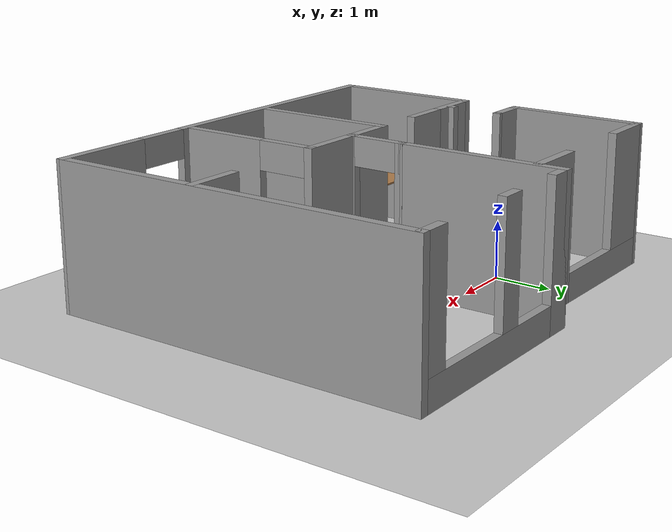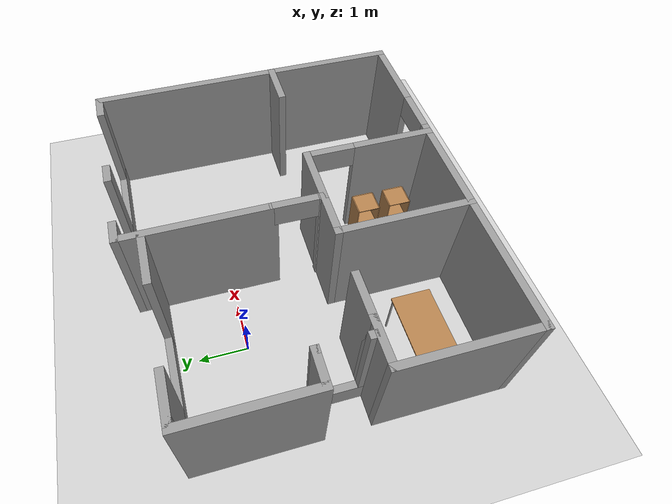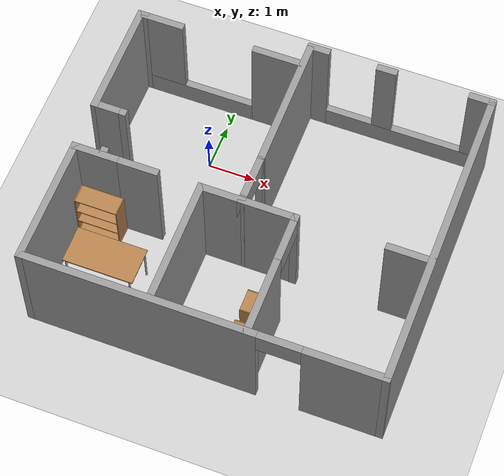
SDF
<sdf version="1.6">
 <world name="default">
  <plugin name="welcome_message" filename="libwelcome_message.so"/>
  <light name="sun" type="directional">
   <pose>0 0 10 0 -0 0</pose>
   <diffuse>0.8 0.8 0.8 1</diffuse>
   <specular>0.2 0.2 0.2 1</specular>
   <attenuation>
    <range>1000</range>
    <constant>0.9</constant>
    <linear>0.01</linear>
    <quadratic>0.001</quadratic>
   </attenuation>
   <direction>-0.5 0.1 -0.9</direction>
  </light>
  <model name="ground_plane">
   <static>1</static>
   <link name="link">
    <collision name="collision">
     <geometry><plane><normal>0 0 1</normal><size>100 100</size></plane></geometry>
     <surface><friction><ode><mu>100</mu><mu2>50</mu2></ode></friction></surface>
    </collision>
    <visual name="visual">
     <cast_shadows>0</cast_shadows>
     <geometry><plane><normal>0 0 1</normal><size>100 100</size></plane></geometry>
     <material>
      <script><uri>file://media/materials/scripts/gazebo.material</uri><name>Gazebo/Grey</name></script>
     </material>
    </visual>
   </link>
  </model>
  <gravity>0 0 -9.8</gravity>
  <magnetic_field>6e-06 2.3e-05 -4.2e-05</magnetic_field>
  <atmosphere type="adiabatic"/>
  <physics name="default_physics" default="0" type="ode">
   <max_step_size>0.001</max_step_size>
   <real_time_factor>1</real_time_factor>
   <real_time_update_rate>1000</real_time_update_rate>
  </physics>
  <scene><ambient>0.4 0.4 0.4 1</ambient><background>0.7 0.7 0.7 1</background><shadows>1</shadows></scene>
  <spherical_coordinates>
   <surface_model>EARTH_WGS84</surface_model>
   <latitude_deg>0</latitude_deg>
   <longitude_deg>0</longitude_deg>
   <elevation>0</elevation>
   <heading_deg>0</heading_deg>
  </spherical_coordinates>
  <model name="room">
   <pose>1.64253 -1.29205 0 0 -0 0</pose>
   <link name="Wall_13">
    <collision name="Wall_13_Collision">
     <geometry><box><size>6.62192 0.15 2.5</size></box></geometry>
     <pose>0 0 1.25 0 -0 0</pose>
    </collision>
    <visual name="Wall_13_Visual">
     <pose>0 0 1.25 0 -0 0</pose>
     <geometry><box><size>6.62192 0.15 2.5</size></box></geometry>
     <material>
      <script><uri>file://media/materials/scripts/gazebo.material</uri><name>Gazebo/Grey</name></script>
      <ambient>1 1 1 1</ambient>
     </material>
     <meta><layer>0</layer></meta>
    </visual>
    <pose>3.68311 0 0 0 0 -1.57099</pose>
   </link>
   <link name="Wall_14">
    <pose>0.007476 -3.2356 0 0 -0 3.14159</pose>
    <visual name="Wall_14_Visual_0">
     <pose>-2.88848 0 1.25 0 -0 0</pose>
     <geometry><box><size>1.72305 0.15 2.5</size></box></geometry>
     <material>
      <script><uri>file://media/materials/scripts/gazebo.material</uri><name>Gazebo/Grey</name></script>
      <ambient>1 1 1 1</ambient>
     </material>
     <meta><layer>0</layer></meta>
    </visual>
    <collision name="Wall_14_Collision_0">
     <geometry><box><size>1.72305 0.15 2.5</size></box></geometry>
     <pose>-2.88848 0 1.25 0 -0 0</pose>
    </collision>
    <visual name="Wall_14_Visual_1">
     <pose>1.31153 0 1.25 0 -0 0</pose>
     <geometry><box><size>4.87695 0.15 2.5</size></box></geometry>
     <material>
      <script><uri>file://media/materials/scripts/gazebo.material</uri><name>Gazebo/Grey</name></script>
      <ambient>1 1 1 1</ambient>
     </material>
     <meta><layer>0</layer></meta>
    </visual>
    <collision name="Wall_14_Collision_1">
     <geometry><box><size>4.87695 0.15 2.5</size></box></geometry>
     <pose>1.31153 0 1.25 0 -0 0</pose>
    </collision>
    <visual name="Wall_14_Visual_2">
     <pose>-1.57695 0 2.25 0 -0 0</pose>
     <geometry><box><size>0.9 0.15 0.5</size></box></geometry>
     <material>
      <script><uri>file://media/materials/scripts/gazebo.material</uri><name>Gazebo/Grey</name></script>
      <ambient>1 1 1 1</ambient>
     </material>
     <meta><layer>0</layer></meta>
    </visual>
    <collision name="Wall_14_Collision_2">
     <geometry><box><size>0.9 0.15 0.5</size></box></geometry>
     <pose>-1.57695 0 2.25 0 -0 0</pose>
    </collision>
   </link>
   <link name="Wall_16">
    <collision name="Wall_16_Collision">
     <geometry><box><size>2.75 0.15 2.5</size></box></geometry>
     <pose>0 0 1.25 0 -0 0</pose>
    </collision>
    <visual name="Wall_16_Visual">
     <pose>0 0 1.25 0 -0 0</pose>
     <geometry><box><size>2.75 0.15 2.5</size></box></geometry>
     <material>
      <script><uri>file://media/materials/scripts/gazebo.material</uri><name>Gazebo/Grey</name></script>
      <ambient>1 1 1 1</ambient>
     </material>
     <meta><layer>0</layer></meta>
    </visual>
    <pose>-3.66752 -1.9356 0 0 -0 1.5708</pose>
   </link>
   <link name="Wall_18">
    <collision name="Wall_18_Collision">
     <geometry><box><size>1 0.15 2.5</size></box></geometry>
     <pose>0 0 1.25 0 -0 0</pose>
    </collision>
    <visual name="Wall_18_Visual">
     <pose>0 0 1.25 0 -0 0</pose>
     <geometry><box><size>1 0.15 2.5</size></box></geometry>
     <material>
      <script><uri>file://media/materials/scripts/gazebo.material</uri><name>Gazebo/Grey</name></script>
      <ambient>1 1 1 1</ambient>
     </material>
     <meta><layer>0</layer></meta>
    </visual>
    <pose>-3.24252 -0.635604 0 0 -0 0</pose>
   </link>
   <link name="Wall_22">
    <collision name="Wall_22_Collision">
     <geometry><box><size>3.048 0.15 2.5</size></box></geometry>
     <pose>0 0 1.25 0 -0 0</pose>
    </collision>
    <visual name="Wall_22_Visual">
     <pose>0 0 1.25 0 -0 0</pose>
     <geometry><box><size>3.048 0.15 2.5</size></box></geometry>
     <material>
      <script><uri>file://media/materials/scripts/gazebo.material</uri><name>Gazebo/Grey</name></script>
      <ambient>1 1 1 1</ambient>
     </material>
     <meta><layer>0</layer></meta>
    </visual>
    <pose>-0.152502 1.7866 0 0 0 -1.5708</pose>
   </link>
   <link name="Wall_24">
    <collision name="Wall_24_Collision">
     <geometry><box><size>1.25 0.15 2.5</size></box></geometry>
     <pose>0 0 1.25 0 -0 0</pose>
    </collision>
    <visual name="Wall_24_Visual">
     <pose>0 0 1.25 0 -0 0</pose>
     <geometry><box><size>1.25 0.15 2.5</size></box></geometry>
     <material>
      <script><uri>file://media/materials/scripts/gazebo.material</uri><name>Gazebo/Grey</name></script>
      <ambient>1 1 1 1</ambient>
     </material>
     <meta><layer>0</layer></meta>
    </visual>
    <pose>0.386851 -0.635466 0 0 -0 0</pose>
   </link>
   <link name="Wall_26">
    <collision name="Wall_26_Collision">
     <geometry><box><size>1 0.15 2.5</size></box></geometry>
     <pose>0 0 1.25 0 -0 0</pose>
    </collision>
    <visual name="Wall_26_Visual">
     <pose>0 0 1.25 0 -0 0</pose>
     <geometry><box><size>1 0.15 2.5</size></box></geometry>
     <material>
      <script><uri>file://media/materials/scripts/gazebo.material</uri><name>Gazebo/Grey</name></script>
      <ambient>1 1 1 1</ambient>
     </material>
     <meta><layer>0</layer></meta>
    </visual>
    <pose>3.25414 -0.611225 0 0 -0 3.14159</pose>
   </link>
   <link name="Wall_28">
    <pose>-0.157825 -0.148931 0 0 0 -1.58174</pose>
    <visual name="Wall_28_Visual_0">
     <pose>-0.538046 0 1.25 0 -0 0</pose>
     <geometry><box><size>0.047036 0.15 2.5</size></box></geometry>
     <material>
      <script><uri>file://media/materials/scripts/gazebo.material</uri><name>Gazebo/Grey</name></script>
      <ambient>1 1 1 1</ambient>
     </material>
     <meta><layer>0</layer></meta>
    </visual>
    <collision name="Wall_28_Collision_0">
     <geometry><box><size>0.047036 0.15 2.5</size></box></geometry>
     <pose>-0.538046 0 1.25 0 -0 0</pose>
    </collision>
    <visual name="Wall_28_Visual_1">
     <pose>0.473518 0 1.25 0 -0 0</pose>
     <geometry><box><size>0.176093 0.15 2.5</size></box></geometry>
     <material>
      <script><uri>file://media/materials/scripts/gazebo.material</uri><name>Gazebo/Grey</name></script>
      <ambient>1 1 1 1</ambient>
     </material>
     <meta><layer>0</layer></meta>
    </visual>
    <collision name="Wall_28_Collision_1">
     <geometry><box><size>0.176093 0.15 2.5</size></box></geometry>
     <pose>0.473518 0 1.25 0 -0 0</pose>
    </collision>
    <visual name="Wall_28_Visual_2">
     <pose>-0.064528 0 2.25 0 -0 0</pose>
     <geometry><box><size>0.9 0.15 0.5</size></box></geometry>
     <material>
      <script><uri>file://media/materials/scripts/gazebo.material</uri><name>Gazebo/Grey</name></script>
      <ambient>1 1 1 1</ambient>
     </material>
     <meta><layer>0</layer></meta>
    </visual>
    <collision name="Wall_28_Collision_2">
     <geometry><box><size>0.9 0.15 0.5</size></box></geometry>
     <pose>-0.064528 0 2.25 0 -0 0</pose>
    </collision>
   </link>
   <link name="Wall_32">
    <pose>-1.90875 2.77411 0 0 -0 3.14159</pose>
    <visual name="Wall_32_Visual_0">
     <pose>-1.21246 0 1.25 0 -0 0</pose>
     <geometry><box><size>1.07508 0.15 2.5</size></box></geometry>
     <material>
      <script><uri>file://media/materials/scripts/gazebo.material</uri><name>Gazebo/Grey</name></script>
      <ambient>1 1 1 1</ambient>
     </material>
     <meta><layer>0</layer></meta>
    </visual>
    <collision name="Wall_32_Collision_0">
     <geometry><box><size>1.07508 0.15 2.5</size></box></geometry>
     <pose>-1.21246 0 1.25 0 -0 0</pose>
    </collision>
    <visual name="Wall_32_Visual_1">
     <pose>0.537538 0 0.25 0 -0 0</pose>
     <geometry><box><size>2.42492 0.15 0.5</size></box></geometry>
     <material>
      <script><uri>file://media/materials/scripts/gazebo.material</uri><name>Gazebo/Grey</name></script>
      <ambient>1 1 1 1</ambient>
     </material>
     <meta><layer>0</layer></meta>
    </visual>
    <collision name="Wall_32_Collision_1">
     <geometry><box><size>2.42492 0.15 0.5</size></box></geometry>
     <pose>0.537538 0 0.25 0 -0 0</pose>
    </collision>
    <visual name="Wall_32_Visual_2">
     <pose>1.28754 0 1.5 0 -0 0</pose>
     <geometry><box><size>0.924924 0.15 2</size></box></geometry>
     <material>
      <script><uri>file://media/materials/scripts/gazebo.material</uri><name>Gazebo/Grey</name></script>
      <ambient>1 1 1 1</ambient>
     </material>
     <meta><layer>0</layer></meta>
    </visual>
    <collision name="Wall_32_Collision_2">
     <geometry><box><size>0.924924 0.15 2</size></box></geometry>
     <pose>1.28754 0 1.5 0 -0 0</pose>
    </collision>
   </link>
   <link name="Wall_34">
    <collision name="Wall_34_Collision">
     <geometry><box><size>0.25 0.15 2.5</size></box></geometry>
     <pose>0 0 1.25 0 -0 0</pose>
    </collision>
    <visual name="Wall_34_Visual">
     <pose>0 0 1.25 0 -0 0</pose>
     <geometry><box><size>0.25 0.15 2.5</size></box></geometry>
     <material>
      <script><uri>file://media/materials/scripts/gazebo.material</uri><name>Gazebo/Grey</name></script>
      <ambient>1 1 1 1</ambient>
     </material>
     <meta><layer>0</layer></meta>
    </visual>
    <pose>-3.63375 2.77411 0 0 -0 3.14159</pose>
   </link>
   <link name="Wall_35">
    <collision name="Wall_35_Collision">
     <geometry><box><size>2.5 0.15 2.5</size></box></geometry>
     <pose>0 0 1.25 0 -0 0</pose>
    </collision>
    <visual name="Wall_35_Visual">
     <pose>0 0 1.25 0 -0 0</pose>
     <geometry><box><size>2.5 0.15 2.5</size></box></geometry>
     <material>
      <script><uri>file://media/materials/scripts/gazebo.material</uri><name>Gazebo/Grey</name></script>
      <ambient>1 1 1 1</ambient>
     </material>
     <meta><layer>0</layer></meta>
    </visual>
    <pose>-3.68376 1.59911 0 0 0 -1.5708</pose>
   </link>
   <link name="Wall_39">
    <collision name="Wall_39_Collision">
     <geometry><box><size>0.75 0.15 2.5</size></box></geometry>
     <pose>0 0 1.25 0 -0 0</pose>
    </collision>
    <visual name="Wall_39_Visual">
     <pose>0 0 1.25 0 -0 0</pose>
     <geometry><box><size>0.75 0.15 2.5</size></box></geometry>
     <material>
      <script><uri>file://media/materials/scripts/gazebo.material</uri><name>Gazebo/Grey</name></script>
      <ambient>1 1 1 1</ambient>
     </material>
     <meta><layer>0</layer></meta>
    </visual>
    <pose>-3.38355 0.424054 0 0 0 -0.0002</pose>
   </link>
   <link name="Wall_41">
    <collision name="Wall_41_Collision">
     <geometry><box><size>1 0.15 2.5</size></box></geometry>
     <pose>0 0 1.25 0 -0 0</pose>
    </collision>
    <visual name="Wall_41_Visual">
     <pose>0 0 1.25 0 -0 0</pose>
     <geometry><box><size>1 0.15 2.5</size></box></geometry>
     <material>
      <script><uri>file://media/materials/scripts/gazebo.material</uri><name>Gazebo/Grey</name></script>
      <ambient>1 1 1 1</ambient>
     </material>
     <meta><layer>0</layer></meta>
    </visual>
    <pose>-2.39252 -0.635604 0 0 -0 0</pose>
   </link>
   <link name="Wall_53">
    <pose>-3.08335 -0.058006 0 0 0 -1.5708</pose>
    <visual name="Wall_53_Visual_0">
     <pose>-0.481204 0 1.25 0 -0 0</pose>
     <geometry><box><size>0.151592 0.15 2.5</size></box></geometry>
     <material>
      <script><uri>file://media/materials/scripts/gazebo.material</uri><name>Gazebo/Grey</name></script>
      <ambient>1 1 1 1</ambient>
     </material>
     <meta><layer>0</layer></meta>
    </visual>
    <collision name="Wall_53_Collision_0">
     <geometry><box><size>0.151592 0.15 2.5</size></box></geometry>
     <pose>-0.481204 0 1.25 0 -0 0</pose>
    </collision>
    <visual name="Wall_53_Visual_1">
     <pose>0.075796 0 0.25 0 -0 0</pose>
     <geometry><box><size>0.962408 0.15 0.5</size></box></geometry>
     <material>
      <script><uri>file://media/materials/scripts/gazebo.material</uri><name>Gazebo/Grey</name></script>
      <ambient>1 1 1 1</ambient>
     </material>
     <meta><layer>0</layer></meta>
    </visual>
    <collision name="Wall_53_Collision_1">
     <geometry><box><size>0.962408 0.15 0.5</size></box></geometry>
     <pose>0.075796 0 0.25 0 -0 0</pose>
    </collision>
    <visual name="Wall_53_Visual_2">
     <pose>0.475796 0 1.5 0 -0 0</pose>
     <geometry><box><size>0.162408 0.15 2</size></box></geometry>
     <material>
      <script><uri>file://media/materials/scripts/gazebo.material</uri><name>Gazebo/Grey</name></script>
      <ambient>1 1 1 1</ambient>
     </material>
     <meta><layer>0</layer></meta>
    </visual>
    <collision name="Wall_53_Collision_2">
     <geometry><box><size>0.162408 0.15 2</size></box></geometry>
     <pose>0.475796 0 1.5 0 -0 0</pose>
    </collision>
   </link>
   <link name="Wall_55">
    <collision name="Wall_55_Collision">
     <geometry><box><size>1 0.15 2.5</size></box></geometry>
     <pose>0 0 1.25 0 -0 0</pose>
    </collision>
    <visual name="Wall_55_Visual">
     <pose>0 0 1.25 0 -0 0</pose>
     <geometry><box><size>1 0.15 2.5</size></box></geometry>
     <material>
      <script><uri>file://media/materials/scripts/gazebo.material</uri><name>Gazebo/Grey</name></script>
      <ambient>1 1 1 1</ambient>
     </material>
     <meta><layer>0</layer></meta>
    </visual>
    <pose>-0.588149 -0.635466 0 0 -0 3.14159</pose>
   </link>
   <link name="Wall_56">
    <collision name="Wall_56_Collision">
     <geometry><box><size>2.75 0.15 2.5</size></box></geometry>
     <pose>0 0 1.25 0 -0 0</pose>
    </collision>
    <visual name="Wall_56_Visual">
     <pose>0 0 1.25 0 -0 0</pose>
     <geometry><box><size>2.75 0.15 2.5</size></box></geometry>
     <material>
      <script><uri>file://media/materials/scripts/gazebo.material</uri><name>Gazebo/Grey</name></script>
      <ambient>1 1 1 1</ambient>
     </material>
     <meta><layer>0</layer></meta>
    </visual>
    <pose>-1.01315 -1.93547 0 0 0 -1.5708</pose>
   </link>
   <link name="Wall_60">
    <pose>0.936852 -1.93547 0 0 0 -1.5708</pose>
    <visual name="Wall_60_Visual_0">
     <pose>-1.29738 0 1.25 0 -0 0</pose>
     <geometry><box><size>0.155245 0.15 2.5</size></box></geometry>
     <material>
      <script><uri>file://media/materials/scripts/gazebo.material</uri><name>Gazebo/Grey</name></script>
      <ambient>1 1 1 1</ambient>
     </material>
     <meta><layer>0</layer></meta>
    </visual>
    <collision name="Wall_60_Collision_0">
     <geometry><box><size>0.155245 0.15 2.5</size></box></geometry>
     <pose>-1.29738 0 1.25 0 -0 0</pose>
    </collision>
    <visual name="Wall_60_Visual_1">
     <pose>0.527623 0 1.25 0 -0 0</pose>
     <geometry><box><size>1.69476 0.15 2.5</size></box></geometry>
     <material>
      <script><uri>file://media/materials/scripts/gazebo.material</uri><name>Gazebo/Grey</name></script>
      <ambient>1 1 1 1</ambient>
     </material>
     <meta><layer>0</layer></meta>
    </visual>
    <collision name="Wall_60_Collision_1">
     <geometry><box><size>1.69476 0.15 2.5</size></box></geometry>
     <pose>0.527623 0 1.25 0 -0 0</pose>
    </collision>
    <visual name="Wall_60_Visual_2">
     <pose>-0.769755 0 2.25 0 -0 0</pose>
     <geometry><box><size>0.9 0.15 0.5</size></box></geometry>
     <material>
      <script><uri>file://media/materials/scripts/gazebo.material</uri><name>Gazebo/Grey</name></script>
      <ambient>1 1 1 1</ambient>
     </material>
     <meta><layer>0</layer></meta>
    </visual>
    <collision name="Wall_60_Collision_2">
     <geometry><box><size>0.9 0.15 0.5</size></box></geometry>
     <pose>-0.769755 0 2.25 0 -0 0</pose>
    </collision>
   </link>
   <link name="Wall_9">
    <pose>1.7535 3.2356 0 0 -0 0</pose>
    <visual name="Wall_9_Visual_0">
     <pose>-1.73618 0 1.25 0 -0 0</pose>
     <geometry><box><size>0.489646 0.15 2.5</size></box></geometry>
     <material>
      <script><uri>file://media/materials/scripts/gazebo.material</uri><name>Gazebo/Grey</name></script>
      <ambient>1 1 1 1</ambient>
     </material>
     <meta><layer>0</layer></meta>
    </visual>
    <collision name="Wall_9_Collision_0">
     <geometry><box><size>0.489646 0.15 2.5</size></box></geometry>
     <pose>-1.73618 0 1.25 0 -0 0</pose>
    </collision>
    <visual name="Wall_9_Visual_1">
     <pose>0.244823 0 0.25 0 -0 0</pose>
     <geometry><box><size>3.47235 0.15 0.5</size></box></geometry>
     <material>
      <script><uri>file://media/materials/scripts/gazebo.material</uri><name>Gazebo/Grey</name></script>
      <ambient>1 1 1 1</ambient>
     </material>
     <meta><layer>0</layer></meta>
    </visual>
    <collision name="Wall_9_Collision_1">
     <geometry><box><size>3.47235 0.15 0.5</size></box></geometry>
     <pose>0.244823 0 0.25 0 -0 0</pose>
    </collision>
    <visual name="Wall_9_Visual_2">
     <pose>-0.276625 0 1.5 0 -0 0</pose>
     <geometry><box><size>0.429458 0.15 2</size></box></geometry>
     <material>
      <script><uri>file://media/materials/scripts/gazebo.material</uri><name>Gazebo/Grey</name></script>
      <ambient>1 1 1 1</ambient>
     </material>
     <meta><layer>0</layer></meta>
    </visual>
    <collision name="Wall_9_Collision_2">
     <geometry><box><size>0.429458 0.15 2</size></box></geometry>
     <pose>-0.276625 0 1.5 0 -0 0</pose>
    </collision>
    <visual name="Wall_9_Visual_3">
     <pose>1.70955 0 1.5 0 -0 0</pose>
     <geometry><box><size>0.542896 0.15 2</size></box></geometry>
     <material>
      <script><uri>file://media/materials/scripts/gazebo.material</uri><name>Gazebo/Grey</name></script>
      <ambient>1 1 1 1</ambient>
     </material>
     <meta><layer>0</layer></meta>
    </visual>
    <collision name="Wall_9_Collision_3">
     <geometry><box><size>0.542896 0.15 2</size></box></geometry>
     <pose>1.70955 0 1.5 0 -0 0</pose>
    </collision>
   </link>
   <static>1</static>
  </model>
  <model name="bookshelf">
   <static>1</static>
   <link name="link">
    <inertial><mass>1</mass></inertial>
    <collision name="back">
     <pose>0 0.005 0.6 0 -0 0</pose>
     <geometry><box><size>0.9 0.01 1.2</size></box></geometry>
    </collision>
    <visual name="visual1">
     <pose>0 0.005 0.6 0 -0 0</pose>
     <geometry><box><size>0.9 0.01 1.2</size></box></geometry>
     <material>
      <script><uri>file://media/materials/scripts/gazebo.material</uri><name>Gazebo/Wood</name></script>
     </material>
    </visual>
    <collision name="left_side">
     <pose>0.45 -0.195 0.6 0 -0 0</pose>
     <geometry><box><size>0.02 0.4 1.2</size></box></geometry>
    </collision>
    <visual name="visual2">
     <pose>0.45 -0.195 0.6 0 -0 0</pose>
     <geometry><box><size>0.02 0.4 1.2</size></box></geometry>
     <material>
      <script><uri>file://media/materials/scripts/gazebo.material</uri><name>Gazebo/Wood</name></script>
     </material>
    </visual>
    <collision name="right_side">
     <pose>-0.45 -0.195 0.6 0 -0 0</pose>
     <geometry><box><size>0.02 0.4 1.2</size></box></geometry>
    </collision>
    <visual name="visual3">
     <pose>-0.45 -0.195 0.6 0 -0 0</pose>
     <geometry><box><size>0.02 0.4 1.2</size></box></geometry>
     <material>
      <script><uri>file://media/materials/scripts/gazebo.material</uri><name>Gazebo/Wood</name></script>
     </material>
    </visual>
    <collision name="bottom">
     <pose>0 -0.195 0.03 0 -0 0</pose>
     <geometry><box><size>0.88 0.4 0.06</size></box></geometry>
    </collision>
    <visual name="visual4">
     <pose>0 -0.195 0.03 0 -0 0</pose>
     <geometry><box><size>0.88 0.4 0.06</size></box></geometry>
     <material>
      <script><uri>file://media/materials/scripts/gazebo.material</uri><name>Gazebo/Wood</name></script>
     </material>
    </visual>
    <collision name="top">
     <pose>0 -0.195 1.19 0 -0 0</pose>
     <geometry><box><size>0.88 0.4 0.02</size></box></geometry>
    </collision>
    <visual name="visual5">
     <pose>0 -0.195 1.19 0 -0 0</pose>
     <geometry><box><size>0.88 0.4 0.02</size></box></geometry>
     <material>
      <script><uri>file://media/materials/scripts/gazebo.material</uri><name>Gazebo/Wood</name></script>
     </material>
    </visual>
    <collision name="low_shelf">
     <pose>0 -0.195 0.43 0 -0 0</pose>
     <geometry><box><size>0.88 0.4 0.02</size></box></geometry>
    </collision>
    <visual name="visual6">
     <pose>0 -0.195 0.43 0 -0 0</pose>
     <geometry><box><size>0.88 0.4 0.02</size></box></geometry>
     <material>
      <script><uri>file://media/materials/scripts/gazebo.material</uri><name>Gazebo/Wood</name></script>
     </material>
    </visual>
    <collision name="high_shelf">
     <pose>0 -0.195 0.8 0 -0 0</pose>
     <geometry><box><size>0.88 0.4 0.02</size></box></geometry>
    </collision>
    <visual name="visual7">
     <pose>0 -0.195 0.8 0 -0 0</pose>
     <geometry><box><size>0.88 0.4 0.02</size></box></geometry>
     <material>
      <script><uri>file://media/materials/scripts/gazebo.material</uri><name>Gazebo/Wood</name></script>
     </material>
    </visual>
   </link>
   <pose>-1.48479 -2.01841 0 0 -0 0</pose>
  </model>
  <model name="cabinet">
   <static>1</static>
   <link name="cabinet_bottom_plate">
    <inertial>
     <pose>0 0 -1 0 -0 0</pose>
     <inertia><ixx>2.05</ixx><ixy>0</ixy><ixz>0</ixz><iyy>2.05</iyy><iyz>0</iyz><izz>2.05</izz></inertia>
     <mass>25</mass>
    </inertial>
    <collision name="cabinet_bottom_plate_geom">
     <pose>0 0 0.01 0 -0 0</pose>
     <geometry><box><size>0.45 0.45 0.02</size></box></geometry>
    </collision>
    <visual name="cabinet_bottom_plate_geom_visual">
     <pose>0 0 0.01 0 -0 0</pose>
     <geometry><box><size>0.45 0.45 0.02</size></box></geometry>
     <material>
      <script><uri>file://media/materials/scripts/gazebo.material</uri><name>Gazebo/Wood</name></script>
     </material>
    </visual>
    <collision name="cabinet_bottom_plate_geom_cabinet_back_plate">
     <pose>0.235 0 0.51 0 -0 0</pose>
     <geometry><box><size>0.02 0.45 1.02</size></box></geometry>
    </collision>
    <visual name="cabinet_bottom_plate_geom_cabinet_back_plate_visual">
     <pose>0.235 0 0.51 0 -0 0</pose>
     <geometry><box><size>0.02 0.45 1.02</size></box></geometry>
     <material>
      <script><uri>file://media/materials/scripts/gazebo.material</uri><name>Gazebo/Wood</name></script>
     </material>
    </visual>
    <collision name="cabinet_bottom_plate_geom_cabinet_left_plate">
     <pose>0 0.235 0.51 0 -0 0</pose>
     <geometry><box><size>0.45 0.02 1.02</size></box></geometry>
    </collision>
    <visual name="cabinet_bottom_plate_geom_cabinet_left_plate_visual">
     <pose>0 0.235 0.51 0 -0 0</pose>
     <geometry><box><size>0.45 0.02 1.02</size></box></geometry>
     <material>
      <script><uri>file://media/materials/scripts/gazebo.material</uri><name>Gazebo/Wood</name></script>
     </material>
    </visual>
    <collision name="cabinet_bottom_plate_geom_cabinet_middle_plate">
     <pose>0 0 0.51 0 -0 0</pose>
     <geometry><box><size>0.45 0.45 0.02</size></box></geometry>
    </collision>
    <visual name="cabinet_bottom_plate_geom_cabinet_middle_plate_visual">
     <pose>0 0 0.51 0 -0 0</pose>
     <geometry><box><size>0.45 0.45 0.02</size></box></geometry>
     <material>
      <script><uri>file://media/materials/scripts/gazebo.material</uri><name>Gazebo/Wood</name></script>
     </material>
    </visual>
    <collision name="cabinet_bottom_plate_geom_cabinet_right_plate">
     <pose>0 -0.235 0.51 0 -0 0</pose>
     <geometry><box><size>0.45 0.02 1.02</size></box></geometry>
    </collision>
    <visual name="cabinet_bottom_plate_geom_cabinet_right_plate_visual">
     <pose>0 -0.235 0.51 0 -0 0</pose>
     <geometry><box><size>0.45 0.02 1.02</size></box></geometry>
     <material>
      <script><uri>file://media/materials/scripts/gazebo.material</uri><name>Gazebo/Wood</name></script>
     </material>
    </visual>
    <collision name="cabinet_bottom_plate_geom_cabinet_top_plate">
     <pose>0 0 1.01 0 -0 0</pose>
     <geometry><box><size>0.45 0.45 0.02</size></box></geometry>
    </collision>
    <visual name="cabinet_bottom_plate_geom_cabinet_top_plate_visual">
     <pose>0 0 1.01 0 -0 0</pose>
     <geometry><box><size>0.45 0.45 0.02</size></box></geometry>
     <material>
      <script><uri>file://media/materials/scripts/gazebo.material</uri><name>Gazebo/Wood</name></script>
     </material>
    </visual>
   </link>
   <pose>2.2278 -3.21071 0 0 -0 0</pose>
  </model>
  <model name="cabinet_0">
   <static>1</static>
   <link name="cabinet_bottom_plate">
    <inertial>
     <pose>0 0 -1 0 -0 0</pose>
     <inertia><ixx>2.05</ixx><ixy>0</ixy><ixz>0</ixz><iyy>2.05</iyy><iyz>0</iyz><izz>2.05</izz></inertia>
     <mass>25</mass>
    </inertial>
    <collision name="cabinet_bottom_plate_geom">
     <pose>0 0 0.01 0 -0 0</pose>
     <geometry><box><size>0.45 0.45 0.02</size></box></geometry>
    </collision>
    <visual name="cabinet_bottom_plate_geom_visual">
     <pose>0 0 0.01 0 -0 0</pose>
     <geometry><box><size>0.45 0.45 0.02</size></box></geometry>
     <material>
      <script><uri>file://media/materials/scripts/gazebo.material</uri><name>Gazebo/Wood</name></script>
     </material>
    </visual>
    <collision name="cabinet_bottom_plate_geom_cabinet_back_plate">
     <pose>0.235 0 0.51 0 -0 0</pose>
     <geometry><box><size>0.02 0.45 1.02</size></box></geometry>
    </collision>
    <visual name="cabinet_bottom_plate_geom_cabinet_back_plate_visual">
     <pose>0.235 0 0.51 0 -0 0</pose>
     <geometry><box><size>0.02 0.45 1.02</size></box></geometry>
     <material>
      <script><uri>file://media/materials/scripts/gazebo.material</uri><name>Gazebo/Wood</name></script>
     </material>
    </visual>
    <collision name="cabinet_bottom_plate_geom_cabinet_left_plate">
     <pose>0 0.235 0.51 0 -0 0</pose>
     <geometry><box><size>0.45 0.02 1.02</size></box></geometry>
    </collision>
    <visual name="cabinet_bottom_plate_geom_cabinet_left_plate_visual">
     <pose>0 0.235 0.51 0 -0 0</pose>
     <geometry><box><size>0.45 0.02 1.02</size></box></geometry>
     <material>
      <script><uri>file://media/materials/scripts/gazebo.material</uri><name>Gazebo/Wood</name></script>
     </material>
    </visual>
    <collision name="cabinet_bottom_plate_geom_cabinet_middle_plate">
     <pose>0 0 0.51 0 -0 0</pose>
     <geometry><box><size>0.45 0.45 0.02</size></box></geometry>
    </collision>
    <visual name="cabinet_bottom_plate_geom_cabinet_middle_plate_visual">
     <pose>0 0 0.51 0 -0 0</pose>
     <geometry><box><size>0.45 0.45 0.02</size></box></geometry>
     <material>
      <script><uri>file://media/materials/scripts/gazebo.material</uri><name>Gazebo/Wood</name></script>
     </material>
    </visual>
    <collision name="cabinet_bottom_plate_geom_cabinet_right_plate">
     <pose>0 -0.235 0.51 0 -0 0</pose>
     <geometry><box><size>0.45 0.02 1.02</size></box></geometry>
    </collision>
    <visual name="cabinet_bottom_plate_geom_cabinet_right_plate_visual">
     <pose>0 -0.235 0.51 0 -0 0</pose>
     <geometry><box><size>0.45 0.02 1.02</size></box></geometry>
     <material>
      <script><uri>file://media/materials/scripts/gazebo.material</uri><name>Gazebo/Wood</name></script>
     </material>
    </visual>
    <collision name="cabinet_bottom_plate_geom_cabinet_top_plate">
     <pose>0 0 1.01 0 -0 0</pose>
     <geometry><box><size>0.45 0.45 0.02</size></box></geometry>
    </collision>
    <visual name="cabinet_bottom_plate_geom_cabinet_top_plate_visual">
     <pose>0 0 1.01 0 -0 0</pose>
     <geometry><box><size>0.45 0.45 0.02</size></box></geometry>
     <material>
      <script><uri>file://media/materials/scripts/gazebo.material</uri><name>Gazebo/Wood</name></script>
     </material>
    </visual>
   </link>
   <pose>2.22475 -3.91991 0 0 -0 0</pose>
  </model>
  <model name="table">
   <static>1</static>
   <link name="link">
    <collision name="surface">
     <pose>0 0 1 0 -0 0</pose>
     <geometry><box><size>1.5 0.8 0.03</size></box></geometry>
     <surface><friction><ode><mu>0.6</mu><mu2>0.6</mu2></ode></friction></surface>
    </collision>
    <visual name="visual1">
     <pose>0 0 1 0 -0 0</pose>
     <geometry><box><size>1.5 0.8 0.03</size></box></geometry>
     <material>
      <script><uri>file://media/materials/scripts/gazebo.material</uri><name>Gazebo/Wood</name></script>
     </material>
    </visual>
    <collision name="front_left_leg">
     <pose>0.68 0.38 0.5 0 -0 0</pose>
     <geometry><cylinder><radius>0.02</radius><length>1</length></cylinder></geometry>
    </collision>
    <visual name="front_left_leg">
     <pose>0.68 0.38 0.5 0 -0 0</pose>
     <geometry><cylinder><radius>0.02</radius><length>1</length></cylinder></geometry>
     <material>
      <script><uri>file://media/materials/scripts/gazebo.material</uri><name>Gazebo/Grey</name></script>
     </material>
    </visual>
    <collision name="front_right_leg">
     <pose>0.68 -0.38 0.5 0 -0 0</pose>
     <geometry><cylinder><radius>0.02</radius><length>1</length></cylinder></geometry>
    </collision>
    <visual name="front_right_leg">
     <pose>0.68 -0.38 0.5 0 -0 0</pose>
     <geometry><cylinder><radius>0.02</radius><length>1</length></cylinder></geometry>
     <material>
      <script><uri>file://media/materials/scripts/gazebo.material</uri><name>Gazebo/Grey</name></script>
     </material>
    </visual>
    <collision name="back_right_leg">
     <pose>-0.68 -0.38 0.5 0 -0 0</pose>
     <geometry><cylinder><radius>0.02</radius><length>1</length></cylinder></geometry>
    </collision>
    <visual name="back_right_leg">
     <pose>-0.68 -0.38 0.5 0 -0 0</pose>
     <geometry><cylinder><radius>0.02</radius><length>1</length></cylinder></geometry>
     <material>
      <script><uri>file://media/materials/scripts/gazebo.material</uri><name>Gazebo/Grey</name></script>
     </material>
    </visual>
    <collision name="back_left_leg">
     <pose>-0.68 0.38 0.5 0 -0 0</pose>
     <geometry><cylinder><radius>0.02</radius><length>1</length></cylinder></geometry>
    </collision>
    <visual name="back_left_leg">
     <pose>-0.68 0.38 0.5 0 -0 0</pose>
     <geometry><cylinder><radius>0.02</radius><length>1</length></cylinder></geometry>
     <material>
      <script><uri>file://media/materials/scripts/gazebo.material</uri><name>Gazebo/Grey</name></script>
     </material>
    </visual>
   </link>
   <pose>-0.927438 -3.248 0 0 -0 0</pose>
  </model>
 </world>
</sdf>
